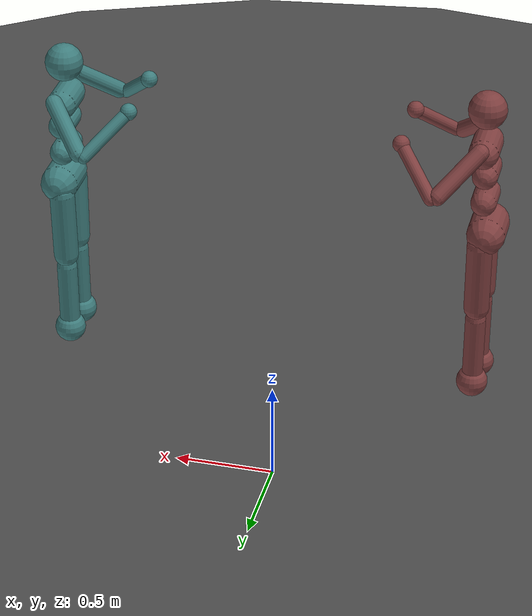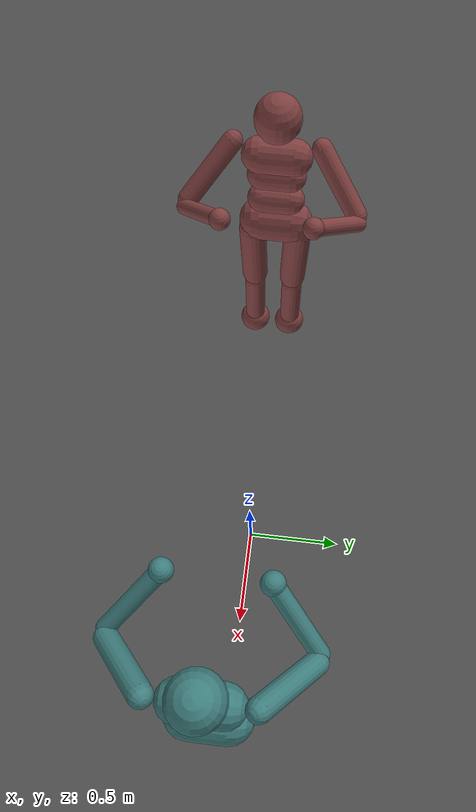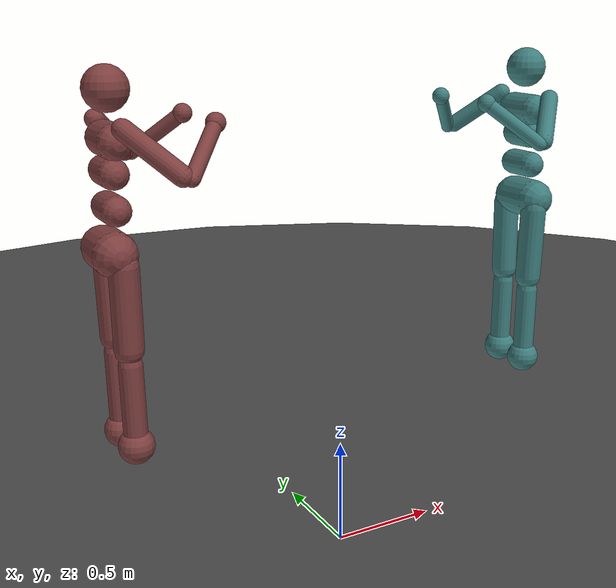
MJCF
<mujoco model="mutiagent_world">
  <compiler angle="degree" coordinate="local" inertiafromgeom="true" />
  <option integrator="RK4" timestep="0.003" solver="PGS" iterations="1000" />
  <default>
    <joint armature="1" damping="1" limited="true" />
  <default class="agent0"><joint armature="1" damping="1" limited="true" />
    <geom conaffinity="1" condim="1" contype="1" margin="0.001" material="geom" rgba="0.5 0.25 0.25 1" />
    <motor ctrllimited="true" ctrlrange="-.4 .4" />
</default><default class="agent1"><joint armature="1" damping="1" limited="true" />
    <geom conaffinity="1" condim="1" contype="1" margin="0.001" material="geom" rgba="0.25 0.5 0.5 1" />
    <motor ctrllimited="true" ctrlrange="-.4 .4" />
</default></default>
  <visual>
    <headlight ambient=".1 .1 .1" diffuse=".6 .6 .6" specular="0.3 0.3 0.3" />
    <map znear=".01" />
    <quality shadowsize="16384" />
  </visual>
  <asset>
    <texture builtin="gradient" height="100" rgb1="1 1 1" rgb2="0 0 0" type="skybox" width="100" />
    <texture builtin="flat" height="1278" mark="cross" markrgb="0 0 0" name="texgeom" random="0.01" rgb1="0.8 0.6 0.4" rgb2="0.8 0.6 0.4" type="cube" width="127" />
    <texture builtin="checker" height="100" name="texplane" rgb1="0.5 0.5 0.5" rgb2="0.5 0.5 0.5" type="2d" width="100" markrgb="0.2 0.2 0.2" mark="edge" />
    <texture name="MatPlane" type="2d" builtin="checker" rgb1=".5 .5 .5" rgb2=".5 .5 .5" width="300" height="300" mark="edge" markrgb="0.1 0.1 0.1" />
    <material name="MatPlane" texture="MatPlane" texrepeat="2 2" texuniform="true" reflectance=".2" />
    <material name="geom" texture="texgeom" texuniform="true" />
  </asset>
  <worldbody>
    <light cutoff="100" diffuse="1 1 1" dir="-0 0 -1.3" directional="true" exponent="1" pos="0 0 1.3" specular=".1 .1 .1" />
    <geom contype="1" conaffinity="1" friction="1 .1 .1" condim="3" material="MatPlane" name="floor" pos="0 0 0" rgba="1 1 1 1" size="20 20 0.125" type="plane" />
    <geom fromto="4 -5 0  4 +5 0" name="rightgoal" rgba="0.6 0.0 0.0 0" size=".03" type="cylinder" />
    <geom fromto="-4 -5 0  -4 +5 0" name="leftgoal" rgba="0.6 0.0 0.0 0" size=".03" type="cylinder" />
    <geom conaffinity="1" condim="3" contype="1" friction="1 .1 .1" name="arena" size="4.5 .25" type="cylinder" pos="0 0 0.25" rgba="0.3 0.3 0.3 1" />
  <body name="agent0/torso" pos="-1 0 2" euler="0 0 0">
    <joint armature="0" damping="0" limited="false" name="agent0/root" pos="0 0 0" stiffness="0" type="free" />
    <geom fromto="0 -.07 0 0 .07 0" name="agent0/torso1" size="0.07" type="capsule" class="agent0" />
    <geom name="agent0/head" pos="0 0 .19" size=".09" type="sphere" user="258" class="agent0" />
    <geom fromto="-.01 -.06 -.12 -.01 .06 -.12" name="agent0/uwaist" size="0.06" type="capsule" class="agent0" />
    <body name="agent0/lwaist" pos="-.01 0 -0.260" quat="1.000 0 -0.002 0">
        <geom fromto="0 -.06 0 0 .06 0" name="agent0/lwaist" size="0.06" type="capsule" class="agent0" />
        <joint armature="0.02" axis="0 0 1" damping="5" name="agent0/abdomen_z" pos="0 0 0.065" range="-45 45" stiffness="20" type="hinge" />
        <joint armature="0.02" axis="0 1 0" damping="5" name="agent0/abdomen_y" pos="0 0 0.065" range="-75 30" stiffness="10" type="hinge" />
        <body name="agent0/pelvis" pos="0 0 -0.165" quat="1.000 0 -0.002 0">
            <joint armature="0.02" axis="1 0 0" damping="5" name="agent0/abdomen_x" pos="0 0 0.1" range="-35 35" stiffness="10" type="hinge" />
            <geom fromto="-.02 -.07 0 -.02 .07 0" name="agent0/butt" size="0.09" type="capsule" class="agent0" />
            <body name="agent0/right_thigh" pos="0 -0.1 -0.04">
                <joint armature="0.01" axis="1 0 0" damping="5" name="agent0/right_hip_x" pos="0 0 0" range="-25 5" stiffness="10" type="hinge" />
                <joint armature="0.01" axis="0 0 1" damping="5" name="agent0/right_hip_z" pos="0 0 0" range="-60 35" stiffness="10" type="hinge" />
                <joint armature="0.0080" axis="0 1 0" damping="5" name="agent0/right_hip_y" pos="0 0 0" range="-110 20" stiffness="20" type="hinge" />
                <geom fromto="0 0 0 0 0.01 -.34" name="agent0/right_thigh1" size="0.06" type="capsule" class="agent0" />
                <body name="agent0/right_shin" pos="0 0.01 -0.403">
                    <joint armature="0.0060" axis="0 -1 0" name="agent0/right_knee" pos="0 0 .02" range="-160 -2" type="hinge" />
                    <geom fromto="0 0 0 0 0 -.3" name="agent0/right_shin1" size="0.049" type="capsule" class="agent0" />
                    <body name="agent0/right_foot" pos="0 0 -0.45">
                        <geom name="agent0/right_foot" pos="0 0 0.1" size="0.075" type="sphere" user="0" class="agent0" />
                    </body>
                </body>
            </body>
            <body name="agent0/left_thigh" pos="0 0.1 -0.04">
                <joint armature="0.01" axis="-1 0 0" damping="5" name="agent0/left_hip_x" pos="0 0 0" range="-25 5" stiffness="10" type="hinge" />
                <joint armature="0.01" axis="0 0 -1" damping="5" name="agent0/left_hip_z" pos="0 0 0" range="-60 35" stiffness="10" type="hinge" />
                <joint armature="0.01" axis="0 1 0" damping="5" name="agent0/left_hip_y" pos="0 0 0" range="-120 20" stiffness="20" type="hinge" />
                <geom fromto="0 0 0 0 -0.01 -.34" name="agent0/left_thigh1" size="0.06" type="capsule" class="agent0" />
                <body name="agent0/left_shin" pos="0 -0.01 -0.403">
                    <joint armature="0.0060" axis="0 -1 0" name="agent0/left_knee" pos="0 0 .02" range="-160 -2" stiffness="1" type="hinge" />
                    <geom fromto="0 0 0 0 0 -.3" name="agent0/left_shin1" size="0.049" type="capsule" class="agent0" />
                    <body name="agent0/left_foot" pos="0 0 -0.45">
                        <geom name="agent0/left_foot" type="sphere" size="0.075" pos="0 0 0.1" user="0" class="agent0" />
                    </body>
                </body>
            </body>
        </body>
    </body>
    <body name="agent0/right_upper_arm" pos="0 -0.17 0.06">
        <joint armature="0.0068" axis="2 1 1" name="agent0/right_shoulder1" pos="0 0 0" range="-85 60" stiffness="1" type="hinge" />
        <joint armature="0.0051" axis="0 -1 1" name="agent0/right_shoulder2" pos="0 0 0" range="-85 60" stiffness="1" type="hinge" />
        <geom fromto="0 0 0 .16 -.16 -.16" name="agent0/right_uarm1" size="0.04 0.16" type="capsule" class="agent0" />
        <body name="agent0/right_lower_arm" pos=".18 -.18 -.18">
            <joint armature="0.0028" axis="0 -1 1" name="agent0/right_elbow" pos="0 0 0" range="-90 50" stiffness="0" type="hinge" />
            <geom fromto="0.01 0.01 0.01 .17 .17 .17" name="agent0/right_larm" size="0.031" type="capsule" class="agent0" />
            <geom name="agent0/right_hand" pos=".18 .18 .18" size="0.04" type="sphere" class="agent0" />
            <camera pos="0 0 0" name="agent0/anon1053783099" />
        </body>
    </body>
    <body name="agent0/left_upper_arm" pos="0 0.17 0.06">
        <joint armature="0.0068" axis="2 -1 1" name="agent0/left_shoulder1" pos="0 0 0" range="-60 85" stiffness="1" type="hinge" />
        <joint armature="0.0051" axis="0 1 1" name="agent0/left_shoulder2" pos="0 0 0" range="-60 85" stiffness="1" type="hinge" />
        <geom fromto="0 0 0 .16 .16 -.16" name="agent0/left_uarm1" size="0.04 0.16" type="capsule" class="agent0" />
        <body name="agent0/left_lower_arm" pos=".18 .18 -.18">
            <joint armature="0.0028" axis="0 -1 -1" name="agent0/left_elbow" pos="0 0 0" range="-90 50" stiffness="0" type="hinge" />
            <geom fromto="0.01 -0.01 0.01 .17 -.17 .17" name="agent0/left_larm" size="0.031" type="capsule" class="agent0" />
            <geom name="agent0/left_hand" pos=".18 -.18 .18" size="0.04" type="sphere" class="agent0" />
        </body>
    </body>
</body>

<body name="agent1/torso" pos="1 0 2" euler="0 0 180">
    <joint armature="0" damping="0" limited="false" name="agent1/root" pos="0 0 0" stiffness="0" type="free" />
    <geom fromto="0 -.07 0 0 .07 0" name="agent1/torso1" size="0.07" type="capsule" class="agent1" />
    <geom name="agent1/head" pos="0 0 .19" size=".09" type="sphere" user="258" class="agent1" />
    <geom fromto="-.01 -.06 -.12 -.01 .06 -.12" name="agent1/uwaist" size="0.06" type="capsule" class="agent1" />
    <body name="agent1/lwaist" pos="-.01 0 -0.260" quat="1.000 0 -0.002 0">
        <geom fromto="0 -.06 0 0 .06 0" name="agent1/lwaist" size="0.06" type="capsule" class="agent1" />
        <joint armature="0.02" axis="0 0 1" damping="5" name="agent1/abdomen_z" pos="0 0 0.065" range="-45 45" stiffness="20" type="hinge" />
        <joint armature="0.02" axis="0 1 0" damping="5" name="agent1/abdomen_y" pos="0 0 0.065" range="-75 30" stiffness="10" type="hinge" />
        <body name="agent1/pelvis" pos="0 0 -0.165" quat="1.000 0 -0.002 0">
            <joint armature="0.02" axis="1 0 0" damping="5" name="agent1/abdomen_x" pos="0 0 0.1" range="-35 35" stiffness="10" type="hinge" />
            <geom fromto="-.02 -.07 0 -.02 .07 0" name="agent1/butt" size="0.09" type="capsule" class="agent1" />
            <body name="agent1/right_thigh" pos="0 -0.1 -0.04">
                <joint armature="0.01" axis="1 0 0" damping="5" name="agent1/right_hip_x" pos="0 0 0" range="-25 5" stiffness="10" type="hinge" />
                <joint armature="0.01" axis="0 0 1" damping="5" name="agent1/right_hip_z" pos="0 0 0" range="-60 35" stiffness="10" type="hinge" />
                <joint armature="0.0080" axis="0 1 0" damping="5" name="agent1/right_hip_y" pos="0 0 0" range="-110 20" stiffness="20" type="hinge" />
                <geom fromto="0 0 0 0 0.01 -.34" name="agent1/right_thigh1" size="0.06" type="capsule" class="agent1" />
                <body name="agent1/right_shin" pos="0 0.01 -0.403">
                    <joint armature="0.0060" axis="0 -1 0" name="agent1/right_knee" pos="0 0 .02" range="-160 -2" type="hinge" />
                    <geom fromto="0 0 0 0 0 -.3" name="agent1/right_shin1" size="0.049" type="capsule" class="agent1" />
                    <body name="agent1/right_foot" pos="0 0 -0.45">
                        <geom name="agent1/right_foot" pos="0 0 0.1" size="0.075" type="sphere" user="0" class="agent1" />
                    </body>
                </body>
            </body>
            <body name="agent1/left_thigh" pos="0 0.1 -0.04">
                <joint armature="0.01" axis="-1 0 0" damping="5" name="agent1/left_hip_x" pos="0 0 0" range="-25 5" stiffness="10" type="hinge" />
                <joint armature="0.01" axis="0 0 -1" damping="5" name="agent1/left_hip_z" pos="0 0 0" range="-60 35" stiffness="10" type="hinge" />
                <joint armature="0.01" axis="0 1 0" damping="5" name="agent1/left_hip_y" pos="0 0 0" range="-120 20" stiffness="20" type="hinge" />
                <geom fromto="0 0 0 0 -0.01 -.34" name="agent1/left_thigh1" size="0.06" type="capsule" class="agent1" />
                <body name="agent1/left_shin" pos="0 -0.01 -0.403">
                    <joint armature="0.0060" axis="0 -1 0" name="agent1/left_knee" pos="0 0 .02" range="-160 -2" stiffness="1" type="hinge" />
                    <geom fromto="0 0 0 0 0 -.3" name="agent1/left_shin1" size="0.049" type="capsule" class="agent1" />
                    <body name="agent1/left_foot" pos="0 0 -0.45">
                        <geom name="agent1/left_foot" type="sphere" size="0.075" pos="0 0 0.1" user="0" class="agent1" />
                    </body>
                </body>
            </body>
        </body>
    </body>
    <body name="agent1/right_upper_arm" pos="0 -0.17 0.06">
        <joint armature="0.0068" axis="2 1 1" name="agent1/right_shoulder1" pos="0 0 0" range="-85 60" stiffness="1" type="hinge" />
        <joint armature="0.0051" axis="0 -1 1" name="agent1/right_shoulder2" pos="0 0 0" range="-85 60" stiffness="1" type="hinge" />
        <geom fromto="0 0 0 .16 -.16 -.16" name="agent1/right_uarm1" size="0.04 0.16" type="capsule" class="agent1" />
        <body name="agent1/right_lower_arm" pos=".18 -.18 -.18">
            <joint armature="0.0028" axis="0 -1 1" name="agent1/right_elbow" pos="0 0 0" range="-90 50" stiffness="0" type="hinge" />
            <geom fromto="0.01 0.01 0.01 .17 .17 .17" name="agent1/right_larm" size="0.031" type="capsule" class="agent1" />
            <geom name="agent1/right_hand" pos=".18 .18 .18" size="0.04" type="sphere" class="agent1" />
            <camera pos="0 0 0" name="agent1/anon2166596935" />
        </body>
    </body>
    <body name="agent1/left_upper_arm" pos="0 0.17 0.06">
        <joint armature="0.0068" axis="2 -1 1" name="agent1/left_shoulder1" pos="0 0 0" range="-60 85" stiffness="1" type="hinge" />
        <joint armature="0.0051" axis="0 1 1" name="agent1/left_shoulder2" pos="0 0 0" range="-60 85" stiffness="1" type="hinge" />
        <geom fromto="0 0 0 .16 .16 -.16" name="agent1/left_uarm1" size="0.04 0.16" type="capsule" class="agent1" />
        <body name="agent1/left_lower_arm" pos=".18 .18 -.18">
            <joint armature="0.0028" axis="0 -1 -1" name="agent1/left_elbow" pos="0 0 0" range="-90 50" stiffness="0" type="hinge" />
            <geom fromto="0.01 -0.01 0.01 .17 -.17 .17" name="agent1/left_larm" size="0.031" type="capsule" class="agent1" />
            <geom name="agent1/left_hand" pos=".18 -.18 .18" size="0.04" type="sphere" class="agent1" />
        </body>
    </body>
</body>

</worldbody>
<actuator>
    <motor gear="100" joint="agent0/abdomen_y" name="agent0/abdomen_y" class="agent0" />
    <motor gear="100" joint="agent0/abdomen_z" name="agent0/abdomen_z" class="agent0" />
    <motor gear="100" joint="agent0/abdomen_x" name="agent0/abdomen_x" class="agent0" />
    <motor gear="100" joint="agent0/right_hip_x" name="agent0/right_hip_x" class="agent0" />
    <motor gear="100" joint="agent0/right_hip_z" name="agent0/right_hip_z" class="agent0" />
    <motor gear="300" joint="agent0/right_hip_y" name="agent0/right_hip_y" class="agent0" />
    <motor gear="200" joint="agent0/right_knee" name="agent0/right_knee" class="agent0" />
    <motor gear="100" joint="agent0/left_hip_x" name="agent0/left_hip_x" class="agent0" />
    <motor gear="100" joint="agent0/left_hip_z" name="agent0/left_hip_z" class="agent0" />
    <motor gear="300" joint="agent0/left_hip_y" name="agent0/left_hip_y" class="agent0" />
    <motor gear="200" joint="agent0/left_knee" name="agent0/left_knee" class="agent0" />
    <motor gear="25" joint="agent0/right_shoulder1" name="agent0/right_shoulder1" class="agent0" />
    <motor gear="25" joint="agent0/right_shoulder2" name="agent0/right_shoulder2" class="agent0" />
    <motor gear="25" joint="agent0/right_elbow" name="agent0/right_elbow" class="agent0" />
    <motor gear="25" joint="agent0/left_shoulder1" name="agent0/left_shoulder1" class="agent0" />
    <motor gear="25" joint="agent0/left_shoulder2" name="agent0/left_shoulder2" class="agent0" />
    <motor gear="25" joint="agent0/left_elbow" name="agent0/left_elbow" class="agent0" />
<motor gear="100" joint="agent1/abdomen_y" name="agent1/abdomen_y" class="agent1" />
    <motor gear="100" joint="agent1/abdomen_z" name="agent1/abdomen_z" class="agent1" />
    <motor gear="100" joint="agent1/abdomen_x" name="agent1/abdomen_x" class="agent1" />
    <motor gear="100" joint="agent1/right_hip_x" name="agent1/right_hip_x" class="agent1" />
    <motor gear="100" joint="agent1/right_hip_z" name="agent1/right_hip_z" class="agent1" />
    <motor gear="300" joint="agent1/right_hip_y" name="agent1/right_hip_y" class="agent1" />
    <motor gear="200" joint="agent1/right_knee" name="agent1/right_knee" class="agent1" />
    <motor gear="100" joint="agent1/left_hip_x" name="agent1/left_hip_x" class="agent1" />
    <motor gear="100" joint="agent1/left_hip_z" name="agent1/left_hip_z" class="agent1" />
    <motor gear="300" joint="agent1/left_hip_y" name="agent1/left_hip_y" class="agent1" />
    <motor gear="200" joint="agent1/left_knee" name="agent1/left_knee" class="agent1" />
    <motor gear="25" joint="agent1/right_shoulder1" name="agent1/right_shoulder1" class="agent1" />
    <motor gear="25" joint="agent1/right_shoulder2" name="agent1/right_shoulder2" class="agent1" />
    <motor gear="25" joint="agent1/right_elbow" name="agent1/right_elbow" class="agent1" />
    <motor gear="25" joint="agent1/left_shoulder1" name="agent1/left_shoulder1" class="agent1" />
    <motor gear="25" joint="agent1/left_shoulder2" name="agent1/left_shoulder2" class="agent1" />
    <motor gear="25" joint="agent1/left_elbow" name="agent1/left_elbow" class="agent1" />
</actuator>

<tendon>
    <fixed name="agent0/left_hipknee">
        <joint coef="-1" joint="agent0/left_hip_y" />
        <joint coef="1" joint="agent0/left_knee" />
    </fixed>
    <fixed name="agent0/right_hipknee">
        <joint coef="-1" joint="agent0/right_hip_y" />
        <joint coef="1" joint="agent0/right_knee" />
    </fixed>
<fixed name="agent1/left_hipknee">
        <joint coef="-1" joint="agent1/left_hip_y" />
        <joint coef="1" joint="agent1/left_knee" />
    </fixed>
    <fixed name="agent1/right_hipknee">
        <joint coef="-1" joint="agent1/right_hip_y" />
        <joint coef="1" joint="agent1/right_knee" />
    </fixed>
</tendon>

</mujoco>
